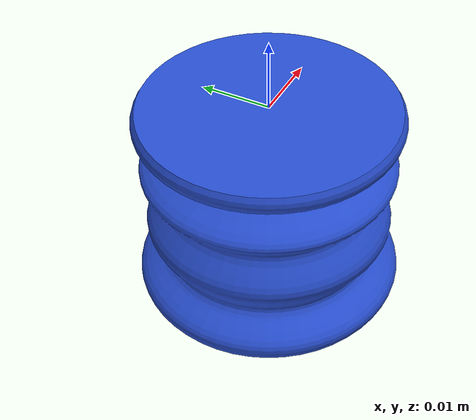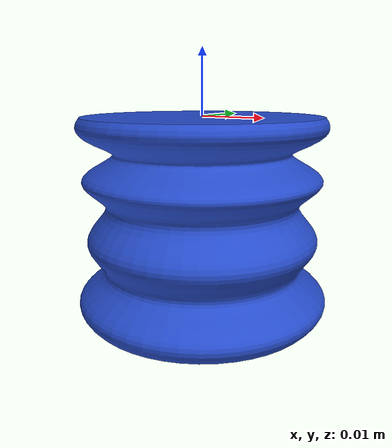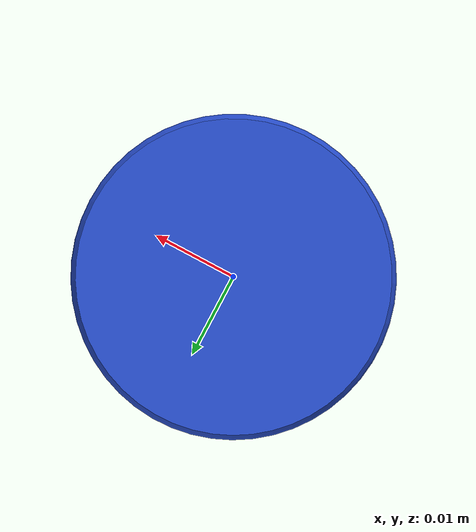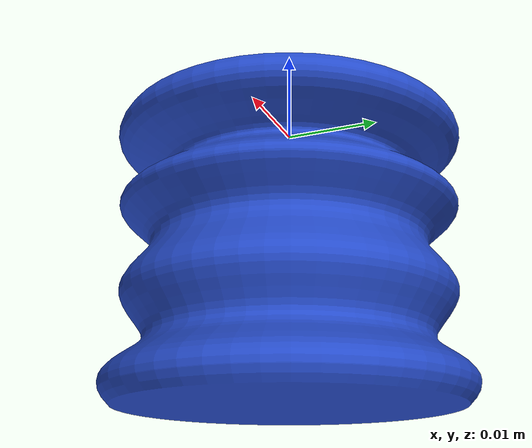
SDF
<sdf version='1.6'>
    <model name='load_1'>
      <link name='base_link'>
        <pose frame=''>0 -0 0 0 0 0</pose>
      <inertial>
        <pose frame=''>0 -0 0 0 -0 0</pose>
        <mass>0.033429</mass>
        <inertia>
          <ixx>5.1131e-06</ixx>
          <ixy>1.9383e-11</ixy>
          <ixz>-6.4853e-11</ixz>
          <iyy>6.5404e-06</iyy>
          <iyz>1.5833e-18</iyz>
          <izz>6.4417e-06</izz>
        </inertia>
      </inertial>
      <collision name='base_link_collision'>
        <pose frame=''>0 0 0 0 -0 0</pose>
        <geometry>
          <mesh>
            <scale>0.9 0.9 1</scale>
            <uri>model://load_1/meshes/base_link.STL</uri>
          </mesh>
        </geometry>
          <surface>
            <friction>
              <ode>
                <mu>1</mu>
                <mu2>1</mu2>
              </ode>
            </friction>
          </surface>
      </collision>
      <visual name='base_link_visual'>
        <pose frame=''>0 0 0 0 -0 0</pose>
        <geometry>
          <mesh>
            <scale>0.9 0.9 1</scale>
            <uri>model://load_1/meshes/base_link.STL</uri>
          </mesh>
        </geometry>
        <material>
          <script>
            <uri>file://media/materials/scripts/gazebo.material</uri>
            <name>Gazebo/Blue</name>
          </script>
        </material>
      </visual>
      </link>
    </model>
</sdf>
